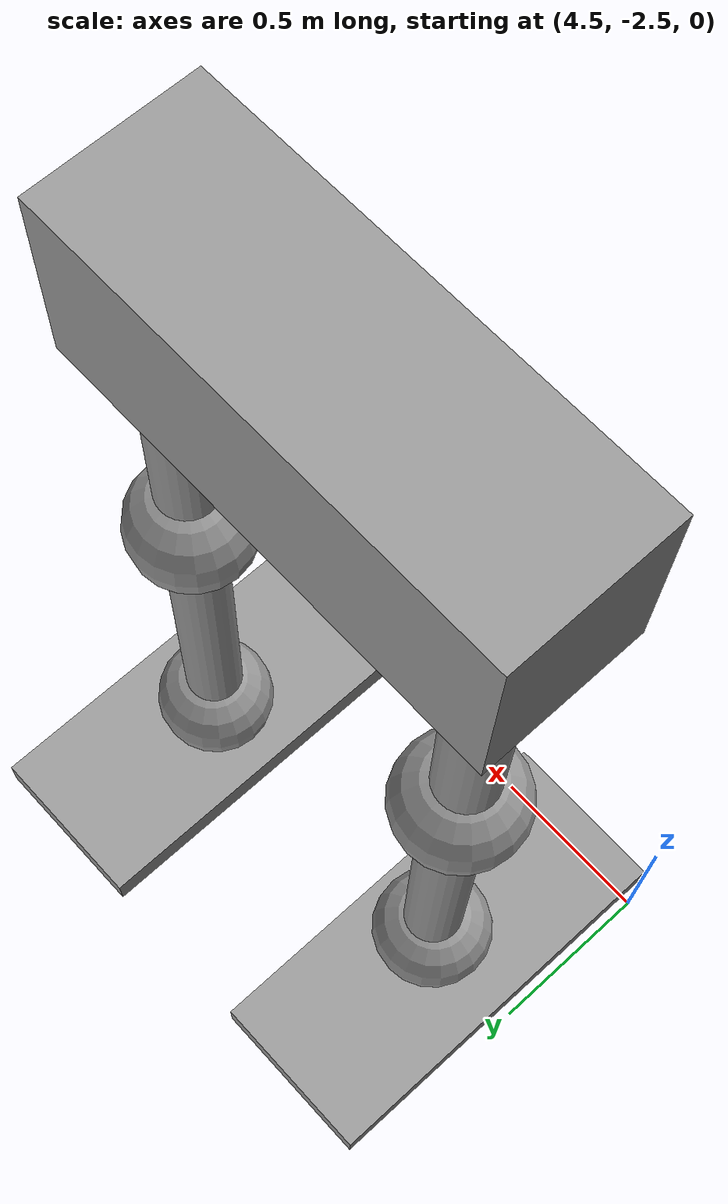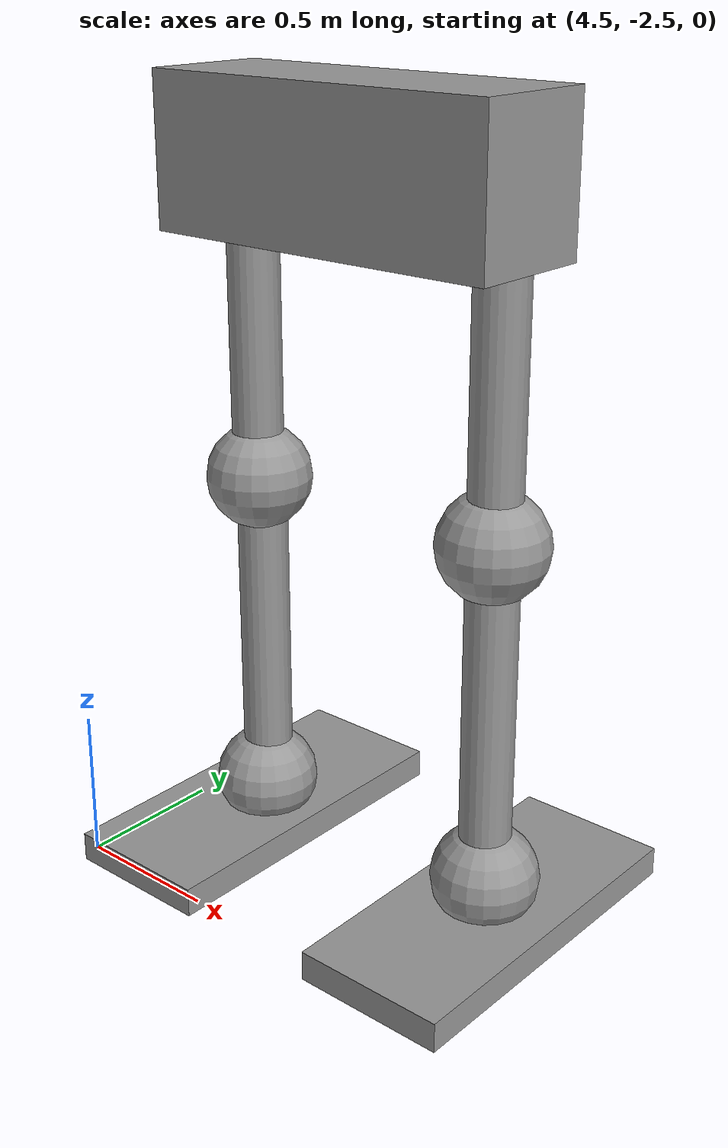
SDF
<?xml version='1.0'?>
<sdf version='1.6'>
  <model name='Humanoid2'>
    <link name='link_0'>
      <pose frame=''>5.79772 -1.97955 0.05 0 -0 0</pose>
      <inertial>
        <mass>0.06046</mass>
        <inertia>
          <ixx>0.00720686</ixx>
          <ixy>0</ixy>
          <ixz>0</ixz>
          <iyy>0.00137814</iyy>
          <iyz>0</iyz>
          <izz>0.00848671</izz>
        </inertia>
        <pose frame=''>0 0 0 0 -0 0</pose>
      </inertial>
      <self_collide>0</self_collide>
      <kinematic>0</kinematic>
      <visual name='visual'>
        <pose frame=''>0 0 0 0 -0 0</pose>
        <geometry>
          <box>
            <size>0.513593 1.19191 0.098763</size>
          </box>
        </geometry>
        <material>
          <lighting>1</lighting>
          <script>
            <uri>file://media/materials/scripts/gazebo.material</uri>
            <name>Gazebo/Grey</name>
          </script>
          <shader type='pixel'>
            <normal_map>__default__</normal_map>
          </shader>
          <ambient>0.3 0.3 0.3 1</ambient>
          <diffuse>0.7 0.7 0.7 1</diffuse>
          <specular>0.01 0.01 0.01 1</specular>
          <emissive>0 0 0 1</emissive>
        </material>
        <transparency>0</transparency>
        <cast_shadows>1</cast_shadows>
      </visual>
      <collision name='collision'>
        <laser_retro>0</laser_retro>
        <max_contacts>10</max_contacts>
        <pose frame=''>0 0 0 0 -0 0</pose>
        <geometry>
          <box>
            <size>0.513593 1.19191 0.098763</size>
          </box>
        </geometry>
        <surface>
          <friction>
            <ode>
              <mu>1</mu>
              <mu2>1</mu2>
              <fdir1>0 0 0</fdir1>
              <slip1>0</slip1>
              <slip2>0</slip2>
            </ode>
            <torsional>
              <coefficient>1</coefficient>
              <patch_radius>0</patch_radius>
              <surface_radius>0</surface_radius>
              <use_patch_radius>1</use_patch_radius>
              <ode>
                <slip>0</slip>
              </ode>
            </torsional>
          </friction>
          <bounce>
            <restitution_coefficient>0</restitution_coefficient>
            <threshold>1e+06</threshold>
          </bounce>
          <contact>
            <collide_without_contact>0</collide_without_contact>
            <collide_without_contact_bitmask>1</collide_without_contact_bitmask>
            <collide_bitmask>1</collide_bitmask>
            <ode>
              <soft_cfm>0</soft_cfm>
              <soft_erp>0.2</soft_erp>
              <kp>1e+13</kp>
              <kd>1</kd>
              <max_vel>0.01</max_vel>
              <min_depth>0</min_depth>
            </ode>
            <bullet>
              <split_impulse>1</split_impulse>
              <split_impulse_penetration_threshold>-0.01</split_impulse_penetration_threshold>
              <soft_cfm>0</soft_cfm>
              <soft_erp>0.2</soft_erp>
              <kp>1e+13</kp>
              <kd>1</kd>
            </bullet>
          </contact>
        </surface>
      </collision>
    </link>
    <link name='link_0_clone'>
      <pose frame=''>4.78369 -1.98069 0.05 0 -0 0</pose>
      <inertial>
        <mass>0.06046</mass>
        <inertia>
          <ixx>0.00720686</ixx>
          <ixy>0</ixy>
          <ixz>0</ixz>
          <iyy>0.00137814</iyy>
          <iyz>0</iyz>
          <izz>0.00848671</izz>
        </inertia>
        <pose frame=''>0 0 0 0 -0 0</pose>
      </inertial>
      <self_collide>0</self_collide>
      <kinematic>0</kinematic>
      <visual name='visual'>
        <pose frame=''>0 0 0 0 -0 0</pose>
        <geometry>
          <box>
            <size>0.513593 1.19191 0.098763</size>
          </box>
        </geometry>
        <material>
          <lighting>1</lighting>
          <script>
            <uri>file://media/materials/scripts/gazebo.material</uri>
            <name>Gazebo/Grey</name>
          </script>
          <shader type='pixel'>
            <normal_map>__default__</normal_map>
          </shader>
          <ambient>0.3 0.3 0.3 1</ambient>
          <diffuse>0.7 0.7 0.7 1</diffuse>
          <specular>0.01 0.01 0.01 1</specular>
          <emissive>0 0 0 1</emissive>
        </material>
        <transparency>0</transparency>
        <cast_shadows>1</cast_shadows>
      </visual>
      <collision name='collision'>
        <laser_retro>0</laser_retro>
        <max_contacts>10</max_contacts>
        <pose frame=''>0 0 0 0 -0 0</pose>
        <geometry>
          <box>
            <size>0.513593 1.19191 0.098763</size>
          </box>
        </geometry>
        <surface>
          <friction>
            <ode>
              <mu>1</mu>
              <mu2>1</mu2>
              <fdir1>0 0 0</fdir1>
              <slip1>0</slip1>
              <slip2>0</slip2>
            </ode>
            <torsional>
              <coefficient>1</coefficient>
              <patch_radius>0</patch_radius>
              <surface_radius>0</surface_radius>
              <use_patch_radius>1</use_patch_radius>
              <ode>
                <slip>0</slip>
              </ode>
            </torsional>
          </friction>
          <bounce>
            <restitution_coefficient>0</restitution_coefficient>
            <threshold>1e+06</threshold>
          </bounce>
          <contact>
            <collide_without_contact>0</collide_without_contact>
            <collide_without_contact_bitmask>1</collide_without_contact_bitmask>
            <collide_bitmask>1</collide_bitmask>
            <ode>
              <soft_cfm>0</soft_cfm>
              <soft_erp>0.2</soft_erp>
              <kp>1e+13</kp>
              <kd>1</kd>
              <max_vel>0.01</max_vel>
              <min_depth>0</min_depth>
            </ode>
            <bullet>
              <split_impulse>1</split_impulse>
              <split_impulse_penetration_threshold>-0.01</split_impulse_penetration_threshold>
              <soft_cfm>0</soft_cfm>
              <soft_erp>0.2</soft_erp>
              <kp>1e+13</kp>
              <kd>1</kd>
            </bullet>
          </contact>
        </surface>
      </collision>
    </link>
    <link name='link_1'>
      <pose frame=''>5.78776 -1.98521 0.184527 0 -0 0</pose>
      <inertial>
        <mass>0.0436597</mass>
        <inertia>
          <ixx>0.000541334</ixx>
          <ixy>0</ixy>
          <ixz>0</ixz>
          <iyy>0.000541334</iyy>
          <iyz>0</iyz>
          <izz>0.000541334</izz>
        </inertia>
        <pose frame=''>0 0 0 0 -0 0</pose>
      </inertial>
      <self_collide>0</self_collide>
      <kinematic>0</kinematic>
      <visual name='visual'>
        <pose frame=''>0 0 0 0 -0 0</pose>
        <geometry>
          <sphere>
            <radius>0.176061</radius>
          </sphere>
        </geometry>
        <material>
          <lighting>1</lighting>
          <script>
            <uri>file://media/materials/scripts/gazebo.material</uri>
            <name>Gazebo/Grey</name>
          </script>
          <shader type='pixel'/>
          <ambient>0.3 0.3 0.3 1</ambient>
          <diffuse>0.7 0.7 0.7 1</diffuse>
          <specular>0.01 0.01 0.01 1</specular>
          <emissive>0 0 0 1</emissive>
        </material>
        <transparency>0</transparency>
        <cast_shadows>1</cast_shadows>
      </visual>
      <collision name='collision'>
        <laser_retro>0</laser_retro>
        <max_contacts>10</max_contacts>
        <pose frame=''>0 0 0 0 -0 0</pose>
        <geometry>
          <sphere>
            <radius>0.176061</radius>
          </sphere>
        </geometry>
        <surface>
          <friction>
            <ode>
              <mu>1</mu>
              <mu2>1</mu2>
              <fdir1>0 0 0</fdir1>
              <slip1>0</slip1>
              <slip2>0</slip2>
            </ode>
            <torsional>
              <coefficient>1</coefficient>
              <patch_radius>0</patch_radius>
              <surface_radius>0</surface_radius>
              <use_patch_radius>1</use_patch_radius>
              <ode>
                <slip>0</slip>
              </ode>
            </torsional>
          </friction>
          <bounce>
            <restitution_coefficient>0</restitution_coefficient>
            <threshold>1e+06</threshold>
          </bounce>
          <contact>
            <collide_without_contact>0</collide_without_contact>
            <collide_without_contact_bitmask>1</collide_without_contact_bitmask>
            <collide_bitmask>1</collide_bitmask>
            <ode>
              <soft_cfm>0</soft_cfm>
              <soft_erp>0.2</soft_erp>
              <kp>1e+13</kp>
              <kd>1</kd>
              <max_vel>0.01</max_vel>
              <min_depth>0</min_depth>
            </ode>
            <bullet>
              <split_impulse>1</split_impulse>
              <split_impulse_penetration_threshold>-0.01</split_impulse_penetration_threshold>
              <soft_cfm>0</soft_cfm>
              <soft_erp>0.2</soft_erp>
              <kp>1e+13</kp>
              <kd>1</kd>
            </bullet>
          </contact>
        </surface>
      </collision>
    </link>
    <link name='link_1_clone'>
      <pose frame=''>5.78609 -1.99189 1.31349 0 -0 0</pose>
      <inertial>
        <mass>0.0436597</mass>
        <inertia>
          <ixx>0.000541334</ixx>
          <ixy>0</ixy>
          <ixz>0</ixz>
          <iyy>0.000541334</iyy>
          <iyz>0</iyz>
          <izz>0.000541334</izz>
        </inertia>
        <pose frame=''>0 0 0 0 -0 0</pose>
      </inertial>
      <self_collide>0</self_collide>
      <kinematic>0</kinematic>
      <visual name='visual'>
        <pose frame=''>0 0 0 0 -0 0</pose>
        <geometry>
          <sphere>
            <radius>0.176061</radius>
          </sphere>
        </geometry>
        <material>
          <lighting>1</lighting>
          <script>
            <uri>file://media/materials/scripts/gazebo.material</uri>
            <name>Gazebo/Grey</name>
          </script>
          <shader type='pixel'/>
          <ambient>0.3 0.3 0.3 1</ambient>
          <diffuse>0.7 0.7 0.7 1</diffuse>
          <specular>0.01 0.01 0.01 1</specular>
          <emissive>0 0 0 1</emissive>
        </material>
        <transparency>0</transparency>
        <cast_shadows>1</cast_shadows>
      </visual>
      <collision name='collision'>
        <laser_retro>0</laser_retro>
        <max_contacts>10</max_contacts>
        <pose frame=''>0 0 0 0 -0 0</pose>
        <geometry>
          <sphere>
            <radius>0.176061</radius>
          </sphere>
        </geometry>
        <surface>
          <friction>
            <ode>
              <mu>1</mu>
              <mu2>1</mu2>
              <fdir1>0 0 0</fdir1>
              <slip1>0</slip1>
              <slip2>0</slip2>
            </ode>
            <torsional>
              <coefficient>1</coefficient>
              <patch_radius>0</patch_radius>
              <surface_radius>0</surface_radius>
              <use_patch_radius>1</use_patch_radius>
              <ode>
                <slip>0</slip>
              </ode>
            </torsional>
          </friction>
          <bounce>
            <restitution_coefficient>0</restitution_coefficient>
            <threshold>1e+06</threshold>
          </bounce>
          <contact>
            <collide_without_contact>0</collide_without_contact>
            <collide_without_contact_bitmask>1</collide_without_contact_bitmask>
            <collide_bitmask>1</collide_bitmask>
            <ode>
              <soft_cfm>0</soft_cfm>
              <soft_erp>0.2</soft_erp>
              <kp>1e+13</kp>
              <kd>1</kd>
              <max_vel>0.01</max_vel>
              <min_depth>0</min_depth>
            </ode>
            <bullet>
              <split_impulse>1</split_impulse>
              <split_impulse_penetration_threshold>-0.01</split_impulse_penetration_threshold>
              <soft_cfm>0</soft_cfm>
              <soft_erp>0.2</soft_erp>
              <kp>1e+13</kp>
              <kd>1</kd>
            </bullet>
          </contact>
        </surface>
      </collision>
    </link>
    <link name='link_1_clone_0'>
      <pose frame=''>4.81912 -1.97367 0.184527 0 -0 0</pose>
      <inertial>
        <mass>0.0436597</mass>
        <inertia>
          <ixx>0.000541334</ixx>
          <ixy>0</ixy>
          <ixz>0</ixz>
          <iyy>0.000541334</iyy>
          <iyz>0</iyz>
          <izz>0.000541334</izz>
        </inertia>
        <pose frame=''>0 0 0 0 -0 0</pose>
      </inertial>
      <self_collide>0</self_collide>
      <kinematic>0</kinematic>
      <visual name='visual'>
        <pose frame=''>0 0 0 0 -0 0</pose>
        <geometry>
          <sphere>
            <radius>0.176061</radius>
          </sphere>
        </geometry>
        <material>
          <lighting>1</lighting>
          <script>
            <uri>file://media/materials/scripts/gazebo.material</uri>
            <name>Gazebo/Grey</name>
          </script>
          <shader type='pixel'/>
          <ambient>0.3 0.3 0.3 1</ambient>
          <diffuse>0.7 0.7 0.7 1</diffuse>
          <specular>0.01 0.01 0.01 1</specular>
          <emissive>0 0 0 1</emissive>
        </material>
        <transparency>0</transparency>
        <cast_shadows>1</cast_shadows>
      </visual>
      <collision name='collision'>
        <laser_retro>0</laser_retro>
        <max_contacts>10</max_contacts>
        <pose frame=''>0 0 0 0 -0 0</pose>
        <geometry>
          <sphere>
            <radius>0.176061</radius>
          </sphere>
        </geometry>
        <surface>
          <friction>
            <ode>
              <mu>1</mu>
              <mu2>1</mu2>
              <fdir1>0 0 0</fdir1>
              <slip1>0</slip1>
              <slip2>0</slip2>
            </ode>
            <torsional>
              <coefficient>1</coefficient>
              <patch_radius>0</patch_radius>
              <surface_radius>0</surface_radius>
              <use_patch_radius>1</use_patch_radius>
              <ode>
                <slip>0</slip>
              </ode>
            </torsional>
          </friction>
          <bounce>
            <restitution_coefficient>0</restitution_coefficient>
            <threshold>1e+06</threshold>
          </bounce>
          <contact>
            <collide_without_contact>0</collide_without_contact>
            <collide_without_contact_bitmask>1</collide_without_contact_bitmask>
            <collide_bitmask>1</collide_bitmask>
            <ode>
              <soft_cfm>0</soft_cfm>
              <soft_erp>0.2</soft_erp>
              <kp>1e+13</kp>
              <kd>1</kd>
              <max_vel>0.01</max_vel>
              <min_depth>0</min_depth>
            </ode>
            <bullet>
              <split_impulse>1</split_impulse>
              <split_impulse_penetration_threshold>-0.01</split_impulse_penetration_threshold>
              <soft_cfm>0</soft_cfm>
              <soft_erp>0.2</soft_erp>
              <kp>1e+13</kp>
              <kd>1</kd>
            </bullet>
          </contact>
        </surface>
      </collision>
    </link>
    <link name='link_1_clone_clone_0'>
      <pose frame=''>4.82981 -1.98574 1.31349 0 -0 0</pose>
      <inertial>
        <mass>0.0436597</mass>
        <inertia>
          <ixx>0.000541334</ixx>
          <ixy>0</ixy>
          <ixz>0</ixz>
          <iyy>0.000541334</iyy>
          <iyz>0</iyz>
          <izz>0.000541334</izz>
        </inertia>
        <pose frame=''>0 0 0 0 -0 0</pose>
      </inertial>
      <self_collide>0</self_collide>
      <kinematic>0</kinematic>
      <visual name='visual'>
        <pose frame=''>0 0 0 0 -0 0</pose>
        <geometry>
          <sphere>
            <radius>0.176061</radius>
          </sphere>
        </geometry>
        <material>
          <lighting>1</lighting>
          <script>
            <uri>file://media/materials/scripts/gazebo.material</uri>
            <name>Gazebo/Grey</name>
          </script>
          <shader type='pixel'/>
          <ambient>0.3 0.3 0.3 1</ambient>
          <diffuse>0.7 0.7 0.7 1</diffuse>
          <specular>0.01 0.01 0.01 1</specular>
          <emissive>0 0 0 1</emissive>
        </material>
        <transparency>0</transparency>
        <cast_shadows>1</cast_shadows>
      </visual>
      <collision name='collision'>
        <laser_retro>0</laser_retro>
        <max_contacts>10</max_contacts>
        <pose frame=''>0 0 0 0 -0 0</pose>
        <geometry>
          <sphere>
            <radius>0.176061</radius>
          </sphere>
        </geometry>
        <surface>
          <friction>
            <ode>
              <mu>1</mu>
              <mu2>1</mu2>
              <fdir1>0 0 0</fdir1>
              <slip1>0</slip1>
              <slip2>0</slip2>
            </ode>
            <torsional>
              <coefficient>1</coefficient>
              <patch_radius>0</patch_radius>
              <surface_radius>0</surface_radius>
              <use_patch_radius>1</use_patch_radius>
              <ode>
                <slip>0</slip>
              </ode>
            </torsional>
          </friction>
          <bounce>
            <restitution_coefficient>0</restitution_coefficient>
            <threshold>1e+06</threshold>
          </bounce>
          <contact>
            <collide_without_contact>0</collide_without_contact>
            <collide_without_contact_bitmask>1</collide_without_contact_bitmask>
            <collide_bitmask>1</collide_bitmask>
            <ode>
              <soft_cfm>0</soft_cfm>
              <soft_erp>0.2</soft_erp>
              <kp>1e+13</kp>
              <kd>1</kd>
              <max_vel>0.01</max_vel>
              <min_depth>0</min_depth>
            </ode>
            <bullet>
              <split_impulse>1</split_impulse>
              <split_impulse_penetration_threshold>-0.01</split_impulse_penetration_threshold>
              <soft_cfm>0</soft_cfm>
              <soft_erp>0.2</soft_erp>
              <kp>1e+13</kp>
              <kd>1</kd>
            </bullet>
          </contact>
        </surface>
      </collision>
    </link>
    <link name='link_2'>
      <pose frame=''>5.78656 -1.98911 0.758077 0 -0 0</pose>
      <inertial>
        <mass>0.0281952</mass>
        <inertia>
          <ixx>0.00239929</ixx>
          <ixy>0</ixy>
          <ixz>0</ixz>
          <iyy>0.00239929</iyy>
          <iyz>0</iyz>
          <izz>9.93738e-05</izz>
        </inertia>
        <pose frame=''>0 0 0 0 -0 0</pose>
      </inertial>
      <self_collide>0</self_collide>
      <kinematic>0</kinematic>
      <visual name='visual'>
        <pose frame=''>0 0 0 0 -0 0</pose>
        <geometry>
          <cylinder>
            <radius>0.0839582</radius>
            <length>1</length>
          </cylinder>
        </geometry>
        <material>
          <lighting>1</lighting>
          <script>
            <uri>file://media/materials/scripts/gazebo.material</uri>
            <name>Gazebo/Grey</name>
          </script>
          <shader type='pixel'/>
          <ambient>0.3 0.3 0.3 1</ambient>
          <diffuse>0.7 0.7 0.7 1</diffuse>
          <specular>0.01 0.01 0.01 1</specular>
          <emissive>0 0 0 1</emissive>
        </material>
        <transparency>0</transparency>
        <cast_shadows>1</cast_shadows>
      </visual>
      <collision name='collision'>
        <laser_retro>0</laser_retro>
        <max_contacts>10</max_contacts>
        <pose frame=''>0 0 0 0 -0 0</pose>
        <geometry>
          <cylinder>
            <radius>0.083958</radius>
            <length>1</length>
          </cylinder>
        </geometry>
        <surface>
          <friction>
            <ode>
              <mu>1</mu>
              <mu2>1</mu2>
              <fdir1>0 0 0</fdir1>
              <slip1>0</slip1>
              <slip2>0</slip2>
            </ode>
            <torsional>
              <coefficient>1</coefficient>
              <patch_radius>0</patch_radius>
              <surface_radius>0</surface_radius>
              <use_patch_radius>1</use_patch_radius>
              <ode>
                <slip>0</slip>
              </ode>
            </torsional>
          </friction>
          <bounce>
            <restitution_coefficient>0</restitution_coefficient>
            <threshold>1e+06</threshold>
          </bounce>
          <contact>
            <collide_without_contact>0</collide_without_contact>
            <collide_without_contact_bitmask>1</collide_without_contact_bitmask>
            <collide_bitmask>1</collide_bitmask>
            <ode>
              <soft_cfm>0</soft_cfm>
              <soft_erp>0.2</soft_erp>
              <kp>1e+13</kp>
              <kd>1</kd>
              <max_vel>0.01</max_vel>
              <min_depth>0</min_depth>
            </ode>
            <bullet>
              <split_impulse>1</split_impulse>
              <split_impulse_penetration_threshold>-0.01</split_impulse_penetration_threshold>
              <soft_cfm>0</soft_cfm>
              <soft_erp>0.2</soft_erp>
              <kp>1e+13</kp>
              <kd>1</kd>
            </bullet>
          </contact>
        </surface>
      </collision>
    </link>
    <link name='link_2_clone'>
      <pose frame=''>5.79309 -1.99682 1.88288 0 -0 0</pose>
      <inertial>
        <mass>0.0281952</mass>
        <inertia>
          <ixx>0.00239929</ixx>
          <ixy>0</ixy>
          <ixz>0</ixz>
          <iyy>0.00239929</iyy>
          <iyz>0</iyz>
          <izz>9.93738e-05</izz>
        </inertia>
        <pose frame=''>0 0 0 0 -0 0</pose>
      </inertial>
      <self_collide>0</self_collide>
      <kinematic>0</kinematic>
      <visual name='visual'>
        <pose frame=''>0 0 0 0 -0 0</pose>
        <geometry>
          <cylinder>
            <radius>0.0839582</radius>
            <length>1</length>
          </cylinder>
        </geometry>
        <material>
          <lighting>1</lighting>
          <script>
            <uri>file://media/materials/scripts/gazebo.material</uri>
            <name>Gazebo/Grey</name>
          </script>
          <shader type='pixel'/>
          <ambient>0.3 0.3 0.3 1</ambient>
          <diffuse>0.7 0.7 0.7 1</diffuse>
          <specular>0.01 0.01 0.01 1</specular>
          <emissive>0 0 0 1</emissive>
        </material>
        <transparency>0</transparency>
        <cast_shadows>1</cast_shadows>
      </visual>
      <collision name='collision'>
        <laser_retro>0</laser_retro>
        <max_contacts>10</max_contacts>
        <pose frame=''>0 0 0 0 -0 0</pose>
        <geometry>
          <cylinder>
            <radius>0.083958</radius>
            <length>1</length>
          </cylinder>
        </geometry>
        <surface>
          <friction>
            <ode>
              <mu>1</mu>
              <mu2>1</mu2>
              <fdir1>0 0 0</fdir1>
              <slip1>0</slip1>
              <slip2>0</slip2>
            </ode>
            <torsional>
              <coefficient>1</coefficient>
              <patch_radius>0</patch_radius>
              <surface_radius>0</surface_radius>
              <use_patch_radius>1</use_patch_radius>
              <ode>
                <slip>0</slip>
              </ode>
            </torsional>
          </friction>
          <bounce>
            <restitution_coefficient>0</restitution_coefficient>
            <threshold>1e+06</threshold>
          </bounce>
          <contact>
            <collide_without_contact>0</collide_without_contact>
            <collide_without_contact_bitmask>1</collide_without_contact_bitmask>
            <collide_bitmask>1</collide_bitmask>
            <ode>
              <soft_cfm>0</soft_cfm>
              <soft_erp>0.2</soft_erp>
              <kp>1e+13</kp>
              <kd>1</kd>
              <max_vel>0.01</max_vel>
              <min_depth>0</min_depth>
            </ode>
            <bullet>
              <split_impulse>1</split_impulse>
              <split_impulse_penetration_threshold>-0.01</split_impulse_penetration_threshold>
              <soft_cfm>0</soft_cfm>
              <soft_erp>0.2</soft_erp>
              <kp>1e+13</kp>
              <kd>1</kd>
            </bullet>
          </contact>
        </surface>
      </collision>
    </link>
    <link name='link_2_clone_0'>
      <pose frame=''>4.82328 -1.96972 0.758077 0 -0 0</pose>
      <inertial>
        <mass>0.0281952</mass>
        <inertia>
          <ixx>0.00239929</ixx>
          <ixy>0</ixy>
          <ixz>0</ixz>
          <iyy>0.00239929</iyy>
          <iyz>0</iyz>
          <izz>9.93738e-05</izz>
        </inertia>
        <pose frame=''>0 0 0 0 -0 0</pose>
      </inertial>
      <self_collide>0</self_collide>
      <kinematic>0</kinematic>
      <visual name='visual'>
        <pose frame=''>0 0 0 0 -0 0</pose>
        <geometry>
          <cylinder>
            <radius>0.0839582</radius>
            <length>1</length>
          </cylinder>
        </geometry>
        <material>
          <lighting>1</lighting>
          <script>
            <uri>file://media/materials/scripts/gazebo.material</uri>
            <name>Gazebo/Grey</name>
          </script>
          <shader type='pixel'/>
          <ambient>0.3 0.3 0.3 1</ambient>
          <diffuse>0.7 0.7 0.7 1</diffuse>
          <specular>0.01 0.01 0.01 1</specular>
          <emissive>0 0 0 1</emissive>
        </material>
        <transparency>0</transparency>
        <cast_shadows>1</cast_shadows>
      </visual>
      <collision name='collision'>
        <laser_retro>0</laser_retro>
        <max_contacts>10</max_contacts>
        <pose frame=''>0 0 0 0 -0 0</pose>
        <geometry>
          <cylinder>
            <radius>0.083958</radius>
            <length>1</length>
          </cylinder>
        </geometry>
        <surface>
          <friction>
            <ode>
              <mu>1</mu>
              <mu2>1</mu2>
              <fdir1>0 0 0</fdir1>
              <slip1>0</slip1>
              <slip2>0</slip2>
            </ode>
            <torsional>
              <coefficient>1</coefficient>
              <patch_radius>0</patch_radius>
              <surface_radius>0</surface_radius>
              <use_patch_radius>1</use_patch_radius>
              <ode>
                <slip>0</slip>
              </ode>
            </torsional>
          </friction>
          <bounce>
            <restitution_coefficient>0</restitution_coefficient>
            <threshold>1e+06</threshold>
          </bounce>
          <contact>
            <collide_without_contact>0</collide_without_contact>
            <collide_without_contact_bitmask>1</collide_without_contact_bitmask>
            <collide_bitmask>1</collide_bitmask>
            <ode>
              <soft_cfm>0</soft_cfm>
              <soft_erp>0.2</soft_erp>
              <kp>1e+13</kp>
              <kd>1</kd>
              <max_vel>0.01</max_vel>
              <min_depth>0</min_depth>
            </ode>
            <bullet>
              <split_impulse>1</split_impulse>
              <split_impulse_penetration_threshold>-0.01</split_impulse_penetration_threshold>
              <soft_cfm>0</soft_cfm>
              <soft_erp>0.2</soft_erp>
              <kp>1e+13</kp>
              <kd>1</kd>
            </bullet>
          </contact>
        </surface>
      </collision>
    </link>
    <link name='link_2_clone_clone'>
      <pose frame=''>4.82782 -1.98664 1.88288 0 -0 0</pose>
      <inertial>
        <mass>0.0281952</mass>
        <inertia>
          <ixx>0.00239929</ixx>
          <ixy>0</ixy>
          <ixz>0</ixz>
          <iyy>0.00239929</iyy>
          <iyz>0</iyz>
          <izz>9.93738e-05</izz>
        </inertia>
        <pose frame=''>0 0 0 0 -0 0</pose>
      </inertial>
      <self_collide>0</self_collide>
      <kinematic>0</kinematic>
      <visual name='visual'>
        <pose frame=''>0 0 0 0 -0 0</pose>
        <geometry>
          <cylinder>
            <radius>0.0839582</radius>
            <length>1</length>
          </cylinder>
        </geometry>
        <material>
          <lighting>1</lighting>
          <script>
            <uri>file://media/materials/scripts/gazebo.material</uri>
            <name>Gazebo/Grey</name>
          </script>
          <shader type='pixel'/>
          <ambient>0.3 0.3 0.3 1</ambient>
          <diffuse>0.7 0.7 0.7 1</diffuse>
          <specular>0.01 0.01 0.01 1</specular>
          <emissive>0 0 0 1</emissive>
        </material>
        <transparency>0</transparency>
        <cast_shadows>1</cast_shadows>
      </visual>
      <collision name='collision'>
        <laser_retro>0</laser_retro>
        <max_contacts>10</max_contacts>
        <pose frame=''>0 0 0 0 -0 0</pose>
        <geometry>
          <cylinder>
            <radius>0.083958</radius>
            <length>1</length>
          </cylinder>
        </geometry>
        <surface>
          <friction>
            <ode>
              <mu>1</mu>
              <mu2>1</mu2>
              <fdir1>0 0 0</fdir1>
              <slip1>0</slip1>
              <slip2>0</slip2>
            </ode>
            <torsional>
              <coefficient>1</coefficient>
              <patch_radius>0</patch_radius>
              <surface_radius>0</surface_radius>
              <use_patch_radius>1</use_patch_radius>
              <ode>
                <slip>0</slip>
              </ode>
            </torsional>
          </friction>
          <bounce>
            <restitution_coefficient>0</restitution_coefficient>
            <threshold>1e+06</threshold>
          </bounce>
          <contact>
            <collide_without_contact>0</collide_without_contact>
            <collide_without_contact_bitmask>1</collide_without_contact_bitmask>
            <collide_bitmask>1</collide_bitmask>
            <ode>
              <soft_cfm>0</soft_cfm>
              <soft_erp>0.2</soft_erp>
              <kp>1e+13</kp>
              <kd>1</kd>
              <max_vel>0.01</max_vel>
              <min_depth>0</min_depth>
            </ode>
            <bullet>
              <split_impulse>1</split_impulse>
              <split_impulse_penetration_threshold>-0.01</split_impulse_penetration_threshold>
              <soft_cfm>0</soft_cfm>
              <soft_erp>0.2</soft_erp>
              <kp>1e+13</kp>
              <kd>1</kd>
            </bullet>
          </contact>
        </surface>
      </collision>
    </link>
    <link name='link_3'>
      <pose frame=''>5.29594 -2.02732 2.37324 0 -0 0</pose>
      <inertial>
        <mass>0.249231</mass>
        <inertia>
          <ixx>0.00849422</ixx>
          <ixy>0</ixy>
          <ixz>0</ixz>
          <iyy>0.0360264</iyy>
          <iyz>0</iyz>
          <izz>0.0350307</izz>
        </inertia>
        <pose frame=''>0 0 0 0 -0 0</pose>
      </inertial>
      <self_collide>0</self_collide>
      <kinematic>0</kinematic>
      <visual name='visual'>
        <pose frame=''>0 0 0 0 -0 0</pose>
        <geometry>
          <box>
            <size>1.22725 0.424878 0.477974</size>
          </box>
        </geometry>
        <material>
          <lighting>1</lighting>
          <script>
            <uri>file://media/materials/scripts/gazebo.material</uri>
            <name>Gazebo/Grey</name>
          </script>
          <shader type='pixel'>
            <normal_map>__default__</normal_map>
          </shader>
          <ambient>0.3 0.3 0.3 1</ambient>
          <diffuse>0.7 0.7 0.7 1</diffuse>
          <specular>0.01 0.01 0.01 1</specular>
          <emissive>0 0 0 1</emissive>
        </material>
        <transparency>0</transparency>
        <cast_shadows>1</cast_shadows>
      </visual>
      <collision name='collision'>
        <laser_retro>0</laser_retro>
        <max_contacts>10</max_contacts>
        <pose frame=''>0 0 0 0 -0 0</pose>
        <geometry>
          <box>
            <size>1.22725 0.424878 0.477974</size>
          </box>
        </geometry>
        <surface>
          <friction>
            <ode>
              <mu>1</mu>
              <mu2>1</mu2>
              <fdir1>0 0 0</fdir1>
              <slip1>0</slip1>
              <slip2>0</slip2>
            </ode>
            <torsional>
              <coefficient>1</coefficient>
              <patch_radius>0</patch_radius>
              <surface_radius>0</surface_radius>
              <use_patch_radius>1</use_patch_radius>
              <ode>
                <slip>0</slip>
              </ode>
            </torsional>
          </friction>
          <bounce>
            <restitution_coefficient>0</restitution_coefficient>
            <threshold>1e+06</threshold>
          </bounce>
          <contact>
            <collide_without_contact>0</collide_without_contact>
            <collide_without_contact_bitmask>1</collide_without_contact_bitmask>
            <collide_bitmask>1</collide_bitmask>
            <ode>
              <soft_cfm>0</soft_cfm>
              <soft_erp>0.2</soft_erp>
              <kp>1e+13</kp>
              <kd>1</kd>
              <max_vel>0.01</max_vel>
              <min_depth>0</min_depth>
            </ode>
            <bullet>
              <split_impulse>1</split_impulse>
              <split_impulse_penetration_threshold>-0.01</split_impulse_penetration_threshold>
              <soft_cfm>0</soft_cfm>
              <soft_erp>0.2</soft_erp>
              <kp>1e+13</kp>
              <kd>1</kd>
            </bullet>
          </contact>
        </surface>
      </collision>
    </link>
    <joint name='link_1_JOINT_9' type='fixed'>
      <parent>link_1</parent>
      <child>link_0</child>
      <pose frame=''>0 0 0 0 -0 0</pose>
      <physics>
        <ode>
          <limit>
            <cfm>0</cfm>
            <erp>0.2</erp>
          </limit>
          <suspension>
            <cfm>0</cfm>
            <erp>0.2</erp>
          </suspension>
        </ode>
      </physics>
    </joint>
    <joint name='link_1_clone_0_JOINT_8' type='fixed'>
      <parent>link_1_clone_0</parent>
      <child>link_0_clone</child>
      <pose frame=''>0 0 0 0 -0 0</pose>
      <physics>
        <ode>
          <limit>
            <cfm>0</cfm>
            <erp>0.2</erp>
          </limit>
          <suspension>
            <cfm>0</cfm>
            <erp>0.2</erp>
          </suspension>
        </ode>
      </physics>
    </joint>
    <joint name='link_1_clone_JOINT_5' type='fixed'>
      <parent>link_1_clone</parent>
      <child>link_2</child>
      <pose frame=''>0 0 0 0 -0 0</pose>
      <physics>
        <ode>
          <limit>
            <cfm>0</cfm>
            <erp>0.2</erp>
          </limit>
          <suspension>
            <cfm>0</cfm>
            <erp>0.2</erp>
          </suspension>
        </ode>
      </physics>
    </joint>
    <joint name='link_1_clone_clone_0_JOINT_4' type='fixed'>
      <parent>link_1_clone_clone_0</parent>
      <child>link_2_clone_0</child>
      <pose frame=''>0 0 0 0 -0 0</pose>
      <physics>
        <ode>
          <limit>
            <cfm>0</cfm>
            <erp>0.2</erp>
          </limit>
          <suspension>
            <cfm>0</cfm>
            <erp>0.2</erp>
          </suspension>
        </ode>
      </physics>
    </joint>
    <joint name='link_2_JOINT_7' type='fixed'>
      <parent>link_2</parent>
      <child>link_1</child>
      <pose frame=''>0 0 0 0 -0 0</pose>
      <physics>
        <ode>
          <limit>
            <cfm>0</cfm>
            <erp>0.2</erp>
          </limit>
          <suspension>
            <cfm>0</cfm>
            <erp>0.2</erp>
          </suspension>
        </ode>
      </physics>
    </joint>
    <joint name='link_2_clone_0_JOINT_6' type='fixed'>
      <parent>link_2_clone_0</parent>
      <child>link_1_clone_0</child>
      <pose frame=''>0 0 0 0 -0 0</pose>
      <physics>
        <ode>
          <limit>
            <cfm>0</cfm>
            <erp>0.2</erp>
          </limit>
          <suspension>
            <cfm>0</cfm>
            <erp>0.2</erp>
          </suspension>
        </ode>
      </physics>
    </joint>
    <joint name='link_2_clone_JOINT_3' type='fixed'>
      <parent>link_2_clone</parent>
      <child>link_1_clone</child>
      <pose frame=''>0 0 0 0 -0 0</pose>
      <physics>
        <ode>
          <limit>
            <cfm>0</cfm>
            <erp>0.2</erp>
          </limit>
          <suspension>
            <cfm>0</cfm>
            <erp>0.2</erp>
          </suspension>
        </ode>
      </physics>
    </joint>
    <joint name='link_2_clone_clone_JOINT_2' type='fixed'>
      <parent>link_2_clone_clone</parent>
      <child>link_1_clone_clone_0</child>
      <pose frame=''>0 0 0 0 -0 0</pose>
      <physics>
        <ode>
          <limit>
            <cfm>0</cfm>
            <erp>0.2</erp>
          </limit>
          <suspension>
            <cfm>0</cfm>
            <erp>0.2</erp>
          </suspension>
        </ode>
      </physics>
    </joint>
    <joint name='link_3_JOINT_0' type='fixed'>
      <parent>link_3</parent>
      <child>link_2_clone_clone</child>
      <pose frame=''>0 0 0 0 -0 0</pose>
      <physics>
        <ode>
          <limit>
            <cfm>0</cfm>
            <erp>0.2</erp>
          </limit>
          <suspension>
            <cfm>0</cfm>
            <erp>0.2</erp>
          </suspension>
        </ode>
      </physics>
    </joint>
    <joint name='link_3_JOINT_1' type='fixed'>
      <parent>link_3</parent>
      <child>link_2_clone</child>
      <pose frame=''>0 0 0 0 -0 0</pose>
      <physics>
        <ode>
          <limit>
            <cfm>0</cfm>
            <erp>0.2</erp>
          </limit>
          <suspension>
            <cfm>0</cfm>
            <erp>0.2</erp>
          </suspension>
        </ode>
      </physics>
    </joint>
    <static>0</static>
    <allow_auto_disable>1</allow_auto_disable>
  </model>
</sdf>
